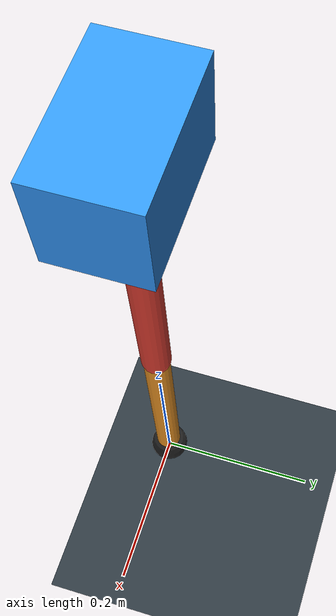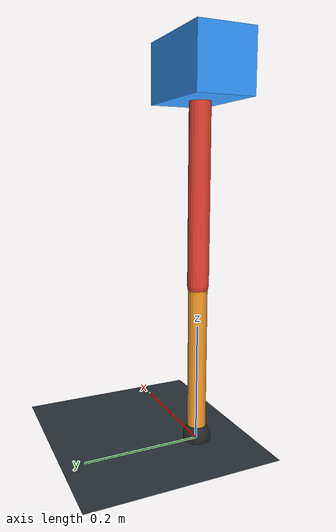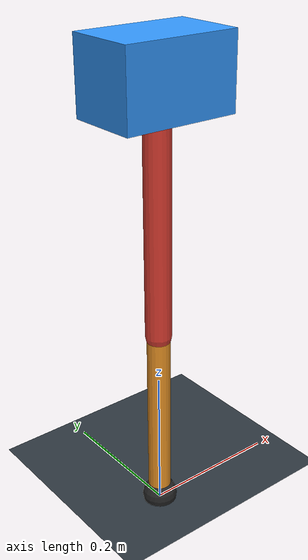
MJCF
<mujoco model="single_axis_two_bar">
  <compiler angle="radian" inertiafromgeom="true"/>
  <option timestep="0.001" integrator="implicitfast" gravity="0 0 -9.81"/>
  <default>
    <joint damping="0.08"/>
    <geom friction="1.2 0.01 0.0001" condim="3"/>
  </default>
  <worldbody>
    <geom name="floor" type="plane" size="5 5 0.1" rgba="0.18 0.22 0.25 1"/>
    <body name="carriage" pos="0 0 0.6197012132649325">
      <joint name="pole_slide" type="slide" axis="0 0 1"/>
      <geom name="payload" type="box" size="0.08 0.05 0.05" mass="2.7380704608599453" rgba="0.2 0.6 1 1"/>
      <body name="thigh" pos="0 0 0">
        <joint name="hip" type="hinge" axis="0 1 0"/>
        <geom name="thigh_link" type="capsule" fromto="0 0 0 0 0 -0.34873285001076393" size="0.018" mass="0.24847676373071723" rgba="0.9 0.25 0.2 1"/>
        <body name="shank" pos="0 0 -0.34873285001076393">
          <joint name="knee" type="hinge" axis="0 1 0"/>
          <geom name="shank_link" type="capsule" fromto="0 0 0 0 0 -0.26436118428298094" size="0.016" mass="0.1883608370264727" rgba="0.95 0.6 0.15 1"/>
          <geom name="foot" type="sphere" pos="0 0 -0.26436118428298094" size="0.025" mass="0.03" rgba="0.15 0.15 0.15 1"/>
          <site name="toe" pos="0 0 -0.26436118428298094" size="0.008"/>
        </body>
      </body>
    </body>
  </worldbody>
  <actuator>
    <motor name="hip_motor" joint="hip" ctrlrange="-39.57564750346337 39.57564750346337"/>
    <motor name="knee_motor" joint="knee" ctrlrange="-109.31223191783693 109.31223191783693"/>
  </actuator>
</mujoco>
